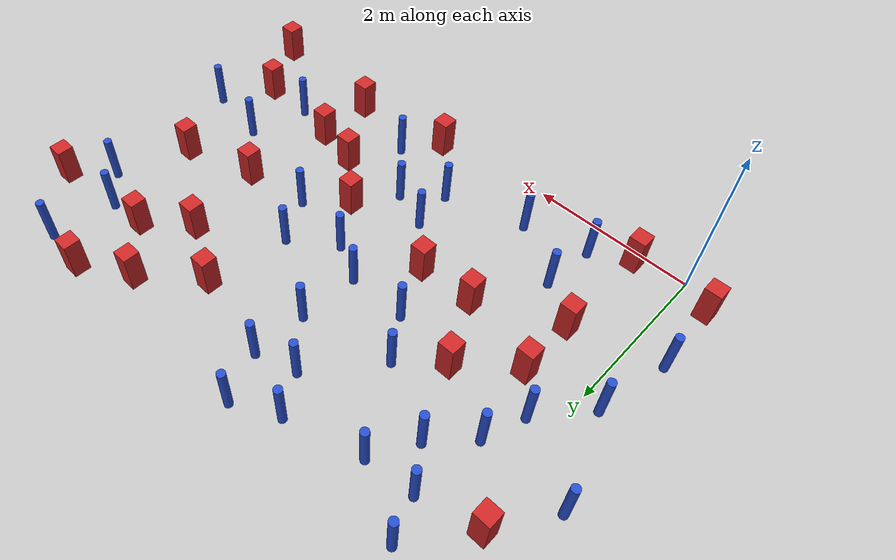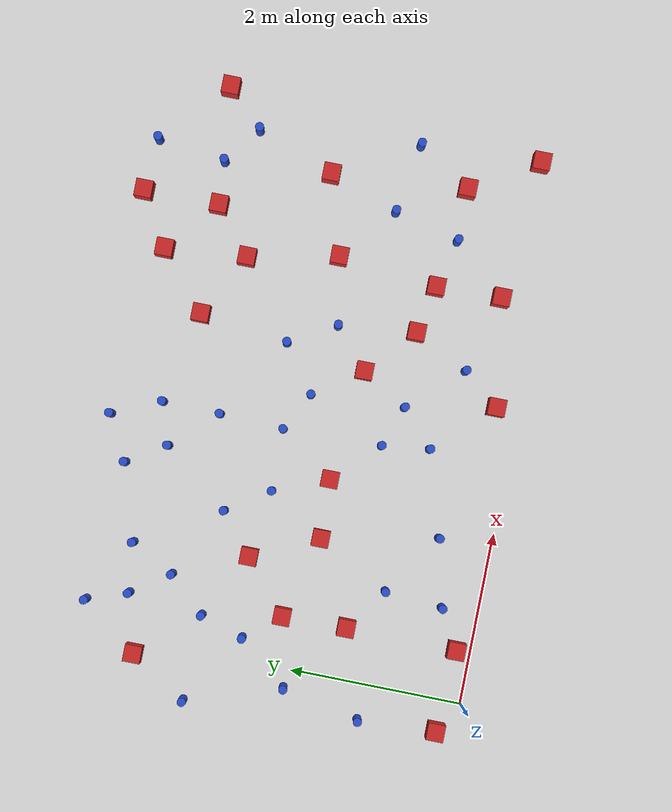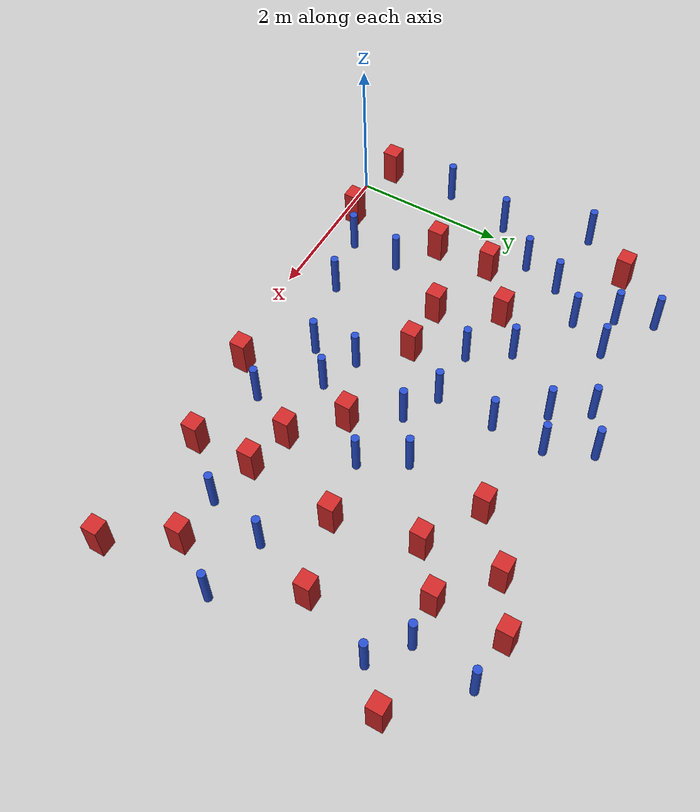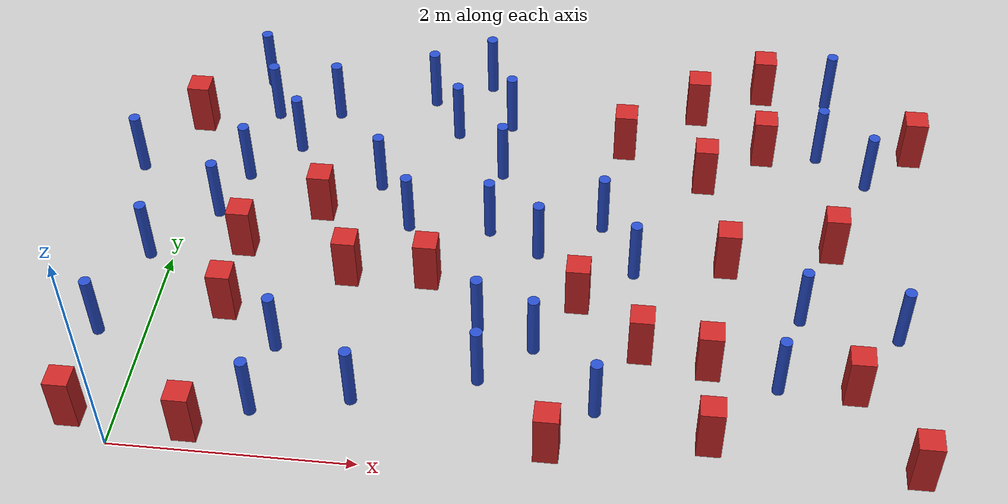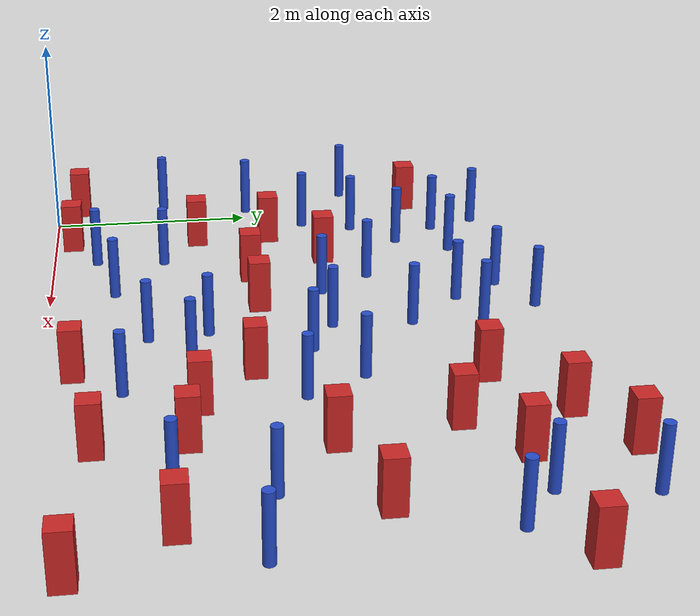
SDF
<sdf version="1.6">
 <model name="dense_98">
  <model name="pole_obstacle1">
   <static>true</static>
   <pose>1.99328007282 4.33544630047 7.38925637345e-09 -8.471706928e-08 1.24976765202e-08 -1.7451309301e-07</pose>
   <link name="link">
    <pose>0 0 0.3 0 -0 0</pose>
    <inertial>
     <mass>1</mass>
     <inertia><ixx>0.145833</ixx><ixy>0</ixy><ixz>0</ixz><iyy>0.145833</iyy><iyz>0</iyz><izz>0.125</izz></inertia>
    </inertial>
    <collision name="collision">
     <geometry><cylinder><radius>0.05</radius><length>.6</length></cylinder></geometry>
    </collision>
    <visual name="visual">
     <geometry><cylinder><radius>0.05</radius><length>.6</length></cylinder></geometry>
     <material>
      <script><name>Gazebo/Blue</name><uri>file://media/materials/scripts/gazebo.material</uri></script>
     </material>
    </visual>
   </link>
  </model>
  <model name="pole_obstacle23">
   <static>true</static>
   <pose>-0.202655463084 2.04438907129 7.38925637345e-09 -8.47170692797e-08 1.24976764929e-08 -1.74513093024e-07</pose>
   <link name="link">
    <pose>0 0 0.3 0 -0 0</pose>
    <inertial>
     <mass>1</mass>
     <inertia><ixx>0.145833</ixx><ixy>0</ixy><ixz>0</ixz><iyy>0.145833</iyy><iyz>0</iyz><izz>0.125</izz></inertia>
    </inertial>
    <collision name="collision">
     <geometry><cylinder><radius>0.05</radius><length>.6</length></cylinder></geometry>
    </collision>
    <visual name="visual">
     <geometry><cylinder><radius>0.05</radius><length>.6</length></cylinder></geometry>
     <material>
      <script><name>Gazebo/Blue</name><uri>file://media/materials/scripts/gazebo.material</uri></script>
     </material>
    </visual>
   </link>
  </model>
  <model name="pole_obstacle25">
   <static>true</static>
   <pose>2.74840885819 1.47649619067 7.38925637345e-09 -8.471706928e-08 1.24976765152e-08 -1.74513093012e-07</pose>
   <link name="link">
    <pose>0 0 0.3 0 -0 0</pose>
    <inertial>
     <mass>1</mass>
     <inertia><ixx>0.145833</ixx><ixy>0</ixy><ixz>0</ixz><iyy>0.145833</iyy><iyz>0</iyz><izz>0.125</izz></inertia>
    </inertial>
    <collision name="collision">
     <geometry><cylinder><radius>0.05</radius><length>.6</length></cylinder></geometry>
    </collision>
    <visual name="visual">
     <geometry><cylinder><radius>0.05</radius><length>.6</length></cylinder></geometry>
     <material>
      <script><name>Gazebo/Blue</name><uri>file://media/materials/scripts/gazebo.material</uri></script>
     </material>
    </visual>
   </link>
  </model>
  <model name="pole_obstacle28">
   <static>true</static>
   <pose>5.61331978366 3.88643642091 7.38925637345e-09 -8.47170692798e-08 1.24976764937e-08 -1.74513093023e-07</pose>
   <link name="link">
    <pose>0 0 0.3 0 -0 0</pose>
    <inertial>
     <mass>1</mass>
     <inertia><ixx>0.145833</ixx><ixy>0</ixy><ixz>0</ixz><iyy>0.145833</iyy><iyz>0</iyz><izz>0.125</izz></inertia>
    </inertial>
    <collision name="collision">
     <geometry><cylinder><radius>0.05</radius><length>.6</length></cylinder></geometry>
    </collision>
    <visual name="visual">
     <geometry><cylinder><radius>0.05</radius><length>.6</length></cylinder></geometry>
     <material>
      <script><name>Gazebo/Blue</name><uri>file://media/materials/scripts/gazebo.material</uri></script>
     </material>
    </visual>
   </link>
  </model>
  <model name="pole_obstacle32">
   <static>true</static>
   <pose>1.66450686175 3.10806377922 7.38925637345e-09 -8.47170692799e-08 1.24976765053e-08 -1.74513093017e-07</pose>
   <link name="link">
    <pose>0 0 0.3 0 -0 0</pose>
    <inertial>
     <mass>1</mass>
     <inertia><ixx>0.145833</ixx><ixy>0</ixy><ixz>0</ixz><iyy>0.145833</iyy><iyz>0</iyz><izz>0.125</izz></inertia>
    </inertial>
    <collision name="collision">
     <geometry><cylinder><radius>0.05</radius><length>.6</length></cylinder></geometry>
    </collision>
    <visual name="visual">
     <geometry><cylinder><radius>0.05</radius><length>.6</length></cylinder></geometry>
     <material>
      <script><name>Gazebo/Blue</name><uri>file://media/materials/scripts/gazebo.material</uri></script>
     </material>
    </visual>
   </link>
  </model>
  <model name="pole_obstacle36">
   <static>true</static>
   <pose>0.52809508491 3.99513970842 7.38925637345e-09 -8.47170692799e-08 1.24976765006e-08 -1.7451309302e-07</pose>
   <link name="link">
    <pose>0 0 0.3 0 -0 0</pose>
    <inertial>
     <mass>1</mass>
     <inertia><ixx>0.145833</ixx><ixy>0</ixy><ixz>0</ixz><iyy>0.145833</iyy><iyz>0</iyz><izz>0.125</izz></inertia>
    </inertial>
    <collision name="collision">
     <geometry><cylinder><radius>0.05</radius><length>.6</length></cylinder></geometry>
    </collision>
    <visual name="visual">
     <geometry><cylinder><radius>0.05</radius><length>.6</length></cylinder></geometry>
     <material>
      <script><name>Gazebo/Blue</name><uri>file://media/materials/scripts/gazebo.material</uri></script>
     </material>
    </visual>
   </link>
  </model>
  <model name="pole_obstacle43">
   <static>true</static>
   <pose>1.11358468092 1.10883143147 7.38925637345e-09 -8.471706928e-08 1.24976765079e-08 -1.74513093017e-07</pose>
   <link name="link">
    <pose>0 0 0.3 0 -0 0</pose>
    <inertial>
     <mass>1</mass>
     <inertia><ixx>0.145833</ixx><ixy>0</ixy><ixz>0</ixz><iyy>0.145833</iyy><iyz>0</iyz><izz>0.125</izz></inertia>
    </inertial>
    <collision name="collision">
     <geometry><cylinder><radius>0.05</radius><length>.6</length></cylinder></geometry>
    </collision>
    <visual name="visual">
     <geometry><cylinder><radius>0.05</radius><length>.6</length></cylinder></geometry>
     <material>
      <script><name>Gazebo/Blue</name><uri>file://media/materials/scripts/gazebo.material</uri></script>
     </material>
    </visual>
   </link>
  </model>
  <model name="square_post_obstacle35">
   <static>true</static>
   <pose>4.49472661884 4.36413959373 1.91545236811e-07 -7.35059704564e-06 1.12565212e-07 2.39332434364e-05</pose>
   <link name="link">
    <pose>0 0 0.25 0 -0 0</pose>
    <inertial>
     <mass>100</mass>
     <inertia>
      <ixx>0.166667</ixx>
      <ixy>0</ixy>
      <ixz>0</ixz>
      <iyy>0.166667</iyy>
      <iyz>0</iyz>
      <izz>0.166667</izz>
     </inertia>
    </inertial>
    <collision name="collision"><geometry><box><size>.2 .2 .5</size></box></geometry></collision>
    <visual name="visual">
     <geometry><box><size>.2 .2 .5</size></box></geometry>
     <material>
      <script><name>Gazebo/Red</name><uri>file://media/materials/scripts/gazebo.material</uri></script>
     </material>
    </visual>
   </link>
  </model>
  <model name="pole_obstacle56">
   <static>true</static>
   <pose>2.81671026725 0.924290170854 7.38925637345e-09 -8.471706928e-08 1.24976765177e-08 -1.74513093012e-07</pose>
   <link name="link">
    <pose>0 0 0.3 0 -0 0</pose>
    <inertial>
     <mass>1</mass>
     <inertia><ixx>0.145833</ixx><ixy>0</ixy><ixz>0</ixz><iyy>0.145833</iyy><iyz>0</iyz><izz>0.125</izz></inertia>
    </inertial>
    <collision name="collision">
     <geometry><cylinder><radius>0.05</radius><length>.6</length></cylinder></geometry>
    </collision>
    <visual name="visual">
     <geometry><cylinder><radius>0.05</radius><length>.6</length></cylinder></geometry>
     <material>
      <script><name>Gazebo/Blue</name><uri>file://media/materials/scripts/gazebo.material</uri></script>
     </material>
    </visual>
   </link>
  </model>
  <model name="pole_obstacle60">
   <static>true</static>
   <pose>1.83155018089 0.620157821392 7.38925637345e-09 -8.47170692799e-08 1.24976765075e-08 -1.74513093017e-07</pose>
   <link name="link">
    <pose>0 0 0.3 0 -0 0</pose>
    <inertial>
     <mass>1</mass>
     <inertia><ixx>0.145833</ixx><ixy>0</ixy><ixz>0</ixz><iyy>0.145833</iyy><iyz>0</iyz><izz>0.125</izz></inertia>
    </inertial>
    <collision name="collision">
     <geometry><cylinder><radius>0.05</radius><length>.6</length></cylinder></geometry>
    </collision>
    <visual name="visual">
     <geometry><cylinder><radius>0.05</radius><length>.6</length></cylinder></geometry>
     <material>
      <script><name>Gazebo/Blue</name><uri>file://media/materials/scripts/gazebo.material</uri></script>
     </material>
    </visual>
   </link>
  </model>
  <model name="pole_obstacle81">
   <static>true</static>
   <pose>2.74621569835 3.37095253552 7.38925637345e-09 -8.47170692798e-08 1.24976764939e-08 -1.74513093025e-07</pose>
   <link name="link">
    <pose>0 0 0.3 0 -0 0</pose>
    <inertial>
     <mass>1</mass>
     <inertia><ixx>0.145833</ixx><ixy>0</ixy><ixz>0</ixz><iyy>0.145833</iyy><iyz>0</iyz><izz>0.125</izz></inertia>
    </inertial>
    <collision name="collision">
     <geometry><cylinder><radius>0.05</radius><length>.6</length></cylinder></geometry>
    </collision>
    <visual name="visual">
     <geometry><cylinder><radius>0.05</radius><length>.6</length></cylinder></geometry>
     <material>
      <script><name>Gazebo/Blue</name><uri>file://media/materials/scripts/gazebo.material</uri></script>
     </material>
    </visual>
   </link>
  </model>
  <model name="square_post_obstacle72">
   <static>true</static>
   <pose>5.7117779515 2.65050151546 1.91545236811e-07 -7.35059704564e-06 1.12565212e-07 2.39332434364e-05</pose>
   <link name="link">
    <pose>0 0 0.25 0 -0 0</pose>
    <inertial>
     <mass>100</mass>
     <inertia>
      <ixx>0.166667</ixx>
      <ixy>0</ixy>
      <ixz>0</ixz>
      <iyy>0.166667</iyy>
      <iyz>0</iyz>
      <izz>0.166667</izz>
     </inertia>
    </inertial>
    <collision name="collision"><geometry><box><size>.2 .2 .5</size></box></geometry></collision>
    <visual name="visual">
     <geometry><box><size>.2 .2 .5</size></box></geometry>
     <material>
      <script><name>Gazebo/Red</name><uri>file://media/materials/scripts/gazebo.material</uri></script>
     </material>
    </visual>
   </link>
  </model>
  <model name="pole_obstacle83">
   <static>true</static>
   <pose>-0.565187128425 3.14880887552 7.38925637345e-09 -8.47170692799e-08 1.2497676509e-08 -1.74513093016e-07</pose>
   <link name="link">
    <pose>0 0 0.3 0 -0 0</pose>
    <inertial>
     <mass>1</mass>
     <inertia><ixx>0.145833</ixx><ixy>0</ixy><ixz>0</ixz><iyy>0.145833</iyy><iyz>0</iyz><izz>0.125</izz></inertia>
    </inertial>
    <collision name="collision">
     <geometry><cylinder><radius>0.05</radius><length>.6</length></cylinder></geometry>
    </collision>
    <visual name="visual">
     <geometry><cylinder><radius>0.05</radius><length>.6</length></cylinder></geometry>
     <material>
      <script><name>Gazebo/Blue</name><uri>file://media/materials/scripts/gazebo.material</uri></script>
     </material>
    </visual>
   </link>
  </model>
  <model name="pole_obstacle84">
   <static>true</static>
   <pose>6.04603668709 3.55796607895 7.38925637345e-09 -8.47170692798e-08 1.24976764937e-08 -1.74513093023e-07</pose>
   <link name="link">
    <pose>0 0 0.3 0 -0 0</pose>
    <inertial>
     <mass>1</mass>
     <inertia><ixx>0.145833</ixx><ixy>0</ixy><ixz>0</ixz><iyy>0.145833</iyy><iyz>0</iyz><izz>0.125</izz></inertia>
    </inertial>
    <collision name="collision">
     <geometry><cylinder><radius>0.05</radius><length>.6</length></cylinder></geometry>
    </collision>
    <visual name="visual">
     <geometry><cylinder><radius>0.05</radius><length>.6</length></cylinder></geometry>
     <material>
      <script><name>Gazebo/Blue</name><uri>file://media/materials/scripts/gazebo.material</uri></script>
     </material>
    </visual>
   </link>
  </model>
  <model name="square_post_obstacle80">
   <static>true</static>
   <pose>4.66591766662 1.21706297758 1.91545236811e-07 -7.35059704564e-06 1.12565212e-07 2.39332434364e-05</pose>
   <link name="link">
    <pose>0 0 0.25 0 -0 0</pose>
    <inertial>
     <mass>100</mass>
     <inertia>
      <ixx>0.166667</ixx>
      <ixy>0</ixy>
      <ixz>0</ixz>
      <iyy>0.166667</iyy>
      <iyz>0</iyz>
      <izz>0.166667</izz>
     </inertia>
    </inertial>
    <collision name="collision"><geometry><box><size>.2 .2 .5</size></box></geometry></collision>
    <visual name="visual">
     <geometry><box><size>.2 .2 .5</size></box></geometry>
     <material>
      <script><name>Gazebo/Red</name><uri>file://media/materials/scripts/gazebo.material</uri></script>
     </material>
    </visual>
   </link>
  </model>
  <model name="pole_obstacle96">
   <static>true</static>
   <pose>2.71603093209 2.62401595281 7.38925637345e-09 -8.47170692798e-08 1.24976764939e-08 -1.74513093025e-07</pose>
   <link name="link">
    <pose>0 0 0.3 0 -0 0</pose>
    <inertial>
     <mass>1</mass>
     <inertia><ixx>0.145833</ixx><ixy>0</ixy><ixz>0</ixz><iyy>0.145833</iyy><iyz>0</iyz><izz>0.125</izz></inertia>
    </inertial>
    <collision name="collision">
     <geometry><cylinder><radius>0.05</radius><length>.6</length></cylinder></geometry>
    </collision>
    <visual name="visual">
     <geometry><cylinder><radius>0.05</radius><length>.6</length></cylinder></geometry>
     <material>
      <script><name>Gazebo/Blue</name><uri>file://media/materials/scripts/gazebo.material</uri></script>
     </material>
    </visual>
   </link>
  </model>
  <model name="pole_obstacle98">
   <static>true</static>
   <pose>0.271782604323 2.61920614039 7.38925637345e-09 -8.471706928e-08 1.24976765078e-08 -1.74513093017e-07</pose>
   <link name="link">
    <pose>0 0 0.3 0 -0 0</pose>
    <inertial>
     <mass>1</mass>
     <inertia><ixx>0.145833</ixx><ixy>0</ixy><ixz>0</ixz><iyy>0.145833</iyy><iyz>0</iyz><izz>0.125</izz></inertia>
    </inertial>
    <collision name="collision">
     <geometry><cylinder><radius>0.05</radius><length>.6</length></cylinder></geometry>
    </collision>
    <visual name="visual">
     <geometry><cylinder><radius>0.05</radius><length>.6</length></cylinder></geometry>
     <material>
      <script><name>Gazebo/Blue</name><uri>file://media/materials/scripts/gazebo.material</uri></script>
     </material>
    </visual>
   </link>
  </model>
  <model name="pole_obstacle99">
   <static>true</static>
   <pose>5.23298798825 1.07632659652 7.38925637345e-09 -8.471706928e-08 1.24976765134e-08 -1.74513093015e-07</pose>
   <link name="link">
    <pose>0 0 0.3 0 -0 0</pose>
    <inertial>
     <mass>1</mass>
     <inertia><ixx>0.145833</ixx><ixy>0</ixy><ixz>0</ixz><iyy>0.145833</iyy><iyz>0</iyz><izz>0.125</izz></inertia>
    </inertial>
    <collision name="collision">
     <geometry><cylinder><radius>0.05</radius><length>.6</length></cylinder></geometry>
    </collision>
    <visual name="visual">
     <geometry><cylinder><radius>0.05</radius><length>.6</length></cylinder></geometry>
     <material>
      <script><name>Gazebo/Blue</name><uri>file://media/materials/scripts/gazebo.material</uri></script>
     </material>
    </visual>
   </link>
  </model>
  <model name="square_post_obstacle96">
   <static>true</static>
   <pose>6.30606154885 0.309462328571 1.91545236811e-07 -7.35059704564e-06 1.12565212e-07 2.39332434364e-05</pose>
   <link name="link">
    <pose>0 0 0.25 0 -0 0</pose>
    <inertial>
     <mass>100</mass>
     <inertia>
      <ixx>0.166667</ixx>
      <ixy>0</ixy>
      <ixz>0</ixz>
      <iyy>0.166667</iyy>
      <iyz>0</iyz>
      <izz>0.166667</izz>
     </inertia>
    </inertial>
    <collision name="collision"><geometry><box><size>.2 .2 .5</size></box></geometry></collision>
    <visual name="visual">
     <geometry><box><size>.2 .2 .5</size></box></geometry>
     <material>
      <script><name>Gazebo/Red</name><uri>file://media/materials/scripts/gazebo.material</uri></script>
     </material>
    </visual>
   </link>
  </model>
  <model name="square_post_obstacle98">
   <static>true</static>
   <pose>4.10705369206 1.33619412559 1.91545236811e-07 -7.35059704564e-06 1.12565212e-07 2.39332434364e-05</pose>
   <link name="link">
    <pose>0 0 0.25 0 -0 0</pose>
    <inertial>
     <mass>100</mass>
     <inertia>
      <ixx>0.166667</ixx>
      <ixy>0</ixy>
      <ixz>0</ixz>
      <iyy>0.166667</iyy>
      <iyz>0</iyz>
      <izz>0.166667</izz>
     </inertia>
    </inertial>
    <collision name="collision"><geometry><box><size>.2 .2 .5</size></box></geometry></collision>
    <visual name="visual">
     <geometry><box><size>.2 .2 .5</size></box></geometry>
     <material>
      <script><name>Gazebo/Red</name><uri>file://media/materials/scripts/gazebo.material</uri></script>
     </material>
    </visual>
   </link>
  </model>
  <model name="pole_obstacle107">
   <static>true</static>
   <pose>3.78068407534 0.6943120413 7.38925637345e-09 -8.471706928e-08 1.24976765177e-08 -1.74513093012e-07</pose>
   <link name="link">
    <pose>0 0 0.3 0 -0 0</pose>
    <inertial>
     <mass>1</mass>
     <inertia><ixx>0.145833</ixx><ixy>0</ixy><ixz>0</ixz><iyy>0.145833</iyy><iyz>0</iyz><izz>0.125</izz></inertia>
    </inertial>
    <collision name="collision">
     <geometry><cylinder><radius>0.05</radius><length>.6</length></cylinder></geometry>
    </collision>
    <visual name="visual">
     <geometry><cylinder><radius>0.05</radius><length>.6</length></cylinder></geometry>
     <material>
      <script><name>Gazebo/Blue</name><uri>file://media/materials/scripts/gazebo.material</uri></script>
     </material>
    </visual>
   </link>
  </model>
  <model name="pole_obstacle108">
   <static>true</static>
   <pose>0.83301651226 3.55359654354 7.38925637345e-09 -8.47170692799e-08 1.2497676509e-08 -1.74513093016e-07</pose>
   <link name="link">
    <pose>0 0 0.3 0 -0 0</pose>
    <inertial>
     <mass>1</mass>
     <inertia><ixx>0.145833</ixx><ixy>0</ixy><ixz>0</ixz><iyy>0.145833</iyy><iyz>0</iyz><izz>0.125</izz></inertia>
    </inertial>
    <collision name="collision">
     <geometry><cylinder><radius>0.05</radius><length>.6</length></cylinder></geometry>
    </collision>
    <visual name="visual">
     <geometry><cylinder><radius>0.05</radius><length>.6</length></cylinder></geometry>
     <material>
      <script><name>Gazebo/Blue</name><uri>file://media/materials/scripts/gazebo.material</uri></script>
     </material>
    </visual>
   </link>
  </model>
  <model name="square_post_obstacle125">
   <static>true</static>
   <pose>0.617754110919 1.46948923768 1.91545236811e-07 -7.35059704564e-06 1.12565212e-07 2.39332434364e-05</pose>
   <link name="link">
    <pose>0 0 0.25 0 -0 0</pose>
    <inertial>
     <mass>100</mass>
     <inertia>
      <ixx>0.166667</ixx>
      <ixy>0</ixy>
      <ixz>0</ixz>
      <iyy>0.166667</iyy>
      <iyz>0</iyz>
      <izz>0.166667</izz>
     </inertia>
    </inertial>
    <collision name="collision"><geometry><box><size>.2 .2 .5</size></box></geometry></collision>
    <visual name="visual">
     <geometry><box><size>.2 .2 .5</size></box></geometry>
     <material>
      <script><name>Gazebo/Red</name><uri>file://media/materials/scripts/gazebo.material</uri></script>
     </material>
    </visual>
   </link>
  </model>
  <model name="square_post_obstacle126">
   <static>true</static>
   <pose>1.56883489974 1.95516472018 1.91545236811e-07 -7.35059704564e-06 1.12565212e-07 2.39332434364e-05</pose>
   <link name="link">
    <pose>0 0 0.25 0 -0 0</pose>
    <inertial>
     <mass>100</mass>
     <inertia>
      <ixx>0.166667</ixx>
      <ixy>0</ixy>
      <ixz>0</ixz>
      <iyy>0.166667</iyy>
      <iyz>0</iyz>
      <izz>0.166667</izz>
     </inertia>
    </inertial>
    <collision name="collision"><geometry><box><size>.2 .2 .5</size></box></geometry></collision>
    <visual name="visual">
     <geometry><box><size>.2 .2 .5</size></box></geometry>
     <material>
      <script><name>Gazebo/Red</name><uri>file://media/materials/scripts/gazebo.material</uri></script>
     </material>
    </visual>
   </link>
  </model>
  <model name="square_post_obstacle129">
   <static>true</static>
   <pose>5.10952692283 3.8490213124 1.91545236811e-07 -7.35059704564e-06 1.12565212e-07 2.39332434364e-05</pose>
   <link name="link">
    <pose>0 0 0.25 0 -0 0</pose>
    <inertial>
     <mass>100</mass>
     <inertia>
      <ixx>0.166667</ixx>
      <ixy>0</ixy>
      <ixz>0</ixz>
      <iyy>0.166667</iyy>
      <iyz>0</iyz>
      <izz>0.166667</izz>
     </inertia>
    </inertial>
    <collision name="collision"><geometry><box><size>.2 .2 .5</size></box></geometry></collision>
    <visual name="visual">
     <geometry><box><size>.2 .2 .5</size></box></geometry>
     <material>
      <script><name>Gazebo/Red</name><uri>file://media/materials/scripts/gazebo.material</uri></script>
     </material>
    </visual>
   </link>
  </model>
  <model name="pole_obstacle134">
   <static>true</static>
   <pose>-0.3972687011 1.13801452622 7.38925637345e-09 -8.47170692798e-08 1.24976765025e-08 -1.74513093018e-07</pose>
   <link name="link">
    <pose>0 0 0.3 0 -0 0</pose>
    <inertial>
     <mass>1</mass>
     <inertia><ixx>0.145833</ixx><ixy>0</ixy><ixz>0</ixz><iyy>0.145833</iyy><iyz>0</iyz><izz>0.125</izz></inertia>
    </inertial>
    <collision name="collision">
     <geometry><cylinder><radius>0.05</radius><length>.6</length></cylinder></geometry>
    </collision>
    <visual name="visual">
     <geometry><cylinder><radius>0.05</radius><length>.6</length></cylinder></geometry>
     <material>
      <script><name>Gazebo/Blue</name><uri>file://media/materials/scripts/gazebo.material</uri></script>
     </material>
    </visual>
   </link>
  </model>
  <model name="square_post_obstacle135">
   <static>true</static>
   <pose>4.58000297488 3.41694430325 1.91545236811e-07 -7.35059704564e-06 1.12565212e-07 2.39332434364e-05</pose>
   <link name="link">
    <pose>0 0 0.25 0 -0 0</pose>
    <inertial>
     <mass>100</mass>
     <inertia>
      <ixx>0.166667</ixx>
      <ixy>0</ixy>
      <ixz>0</ixz>
      <iyy>0.166667</iyy>
      <iyz>0</iyz>
      <izz>0.166667</izz>
     </inertia>
    </inertial>
    <collision name="collision"><geometry><box><size>.2 .2 .5</size></box></geometry></collision>
    <visual name="visual">
     <geometry><box><size>.2 .2 .5</size></box></geometry>
     <material>
      <script><name>Gazebo/Red</name><uri>file://media/materials/scripts/gazebo.material</uri></script>
     </material>
    </visual>
   </link>
  </model>
  <model name="square_post_obstacle138">
   <static>true</static>
   <pose>5.8442672942 1.08039177608 1.91545236811e-07 -7.35059704564e-06 1.12565212e-07 2.39332434364e-05</pose>
   <link name="link">
    <pose>0 0 0.25 0 -0 0</pose>
    <inertial>
     <mass>100</mass>
     <inertia>
      <ixx>0.166667</ixx>
      <ixy>0</ixy>
      <ixz>0</ixz>
      <iyy>0.166667</iyy>
      <iyz>0</iyz>
      <izz>0.166667</izz>
     </inertia>
    </inertial>
    <collision name="collision"><geometry><box><size>.2 .2 .5</size></box></geometry></collision>
    <visual name="visual">
     <geometry><box><size>.2 .2 .5</size></box></geometry>
     <material>
      <script><name>Gazebo/Red</name><uri>file://media/materials/scripts/gazebo.material</uri></script>
     </material>
    </visual>
   </link>
  </model>
  <model name="square_post_obstacle140">
   <static>true</static>
   <pose>-0.347591691699 0.234291800025 1.91545236811e-07 -7.35059704564e-06 1.12565212e-07 2.39332434364e-05</pose>
   <link name="link">
    <pose>0 0 0.25 0 -0 0</pose>
    <inertial>
     <mass>100</mass>
     <inertia>
      <ixx>0.166667</ixx>
      <ixy>0</ixy>
      <ixz>0</ixz>
      <iyy>0.166667</iyy>
      <iyz>0</iyz>
      <izz>0.166667</izz>
     </inertia>
    </inertial>
    <collision name="collision"><geometry><box><size>.2 .2 .5</size></box></geometry></collision>
    <visual name="visual">
     <geometry><box><size>.2 .2 .5</size></box></geometry>
     <material>
      <script><name>Gazebo/Red</name><uri>file://media/materials/scripts/gazebo.material</uri></script>
     </material>
    </visual>
   </link>
  </model>
  <model name="pole_obstacle146">
   <static>true</static>
   <pose>6.2349067922 1.70053526463 7.38925637345e-09 -8.471706928e-08 1.24976765134e-08 -1.74513093015e-07</pose>
   <link name="link">
    <pose>0 0 0.3 0 -0 0</pose>
    <inertial>
     <mass>1</mass>
     <inertia><ixx>0.145833</ixx><ixy>0</ixy><ixz>0</ixz><iyy>0.145833</iyy><iyz>0</iyz><izz>0.125</izz></inertia>
    </inertial>
    <collision name="collision">
     <geometry><cylinder><radius>0.05</radius><length>.6</length></cylinder></geometry>
    </collision>
    <visual name="visual">
     <geometry><cylinder><radius>0.05</radius><length>.6</length></cylinder></geometry>
     <material>
      <script><name>Gazebo/Blue</name><uri>file://media/materials/scripts/gazebo.material</uri></script>
     </material>
    </visual>
   </link>
  </model>
  <model name="pole_obstacle147">
   <static>true</static>
   <pose>2.27457025655 3.8860952235 7.38925637345e-09 -8.47170692798e-08 1.24976764939e-08 -1.74513093025e-07</pose>
   <link name="link">
    <pose>0 0 0.3 0 -0 0</pose>
    <inertial>
     <mass>1</mass>
     <inertia><ixx>0.145833</ixx><ixy>0</ixy><ixz>0</ixz><iyy>0.145833</iyy><iyz>0</iyz><izz>0.125</izz></inertia>
    </inertial>
    <collision name="collision">
     <geometry><cylinder><radius>0.05</radius><length>.6</length></cylinder></geometry>
    </collision>
    <visual name="visual">
     <geometry><cylinder><radius>0.05</radius><length>.6</length></cylinder></geometry>
     <material>
      <script><name>Gazebo/Blue</name><uri>file://media/materials/scripts/gazebo.material</uri></script>
     </material>
    </visual>
   </link>
  </model>
  <model name="pole_obstacle150">
   <static>true</static>
   <pose>1.10676502445 4.06251789575 7.38925637345e-09 -8.47170692799e-08 1.24976765033e-08 -1.74513093018e-07</pose>
   <link name="link">
    <pose>0 0 0.3 0 -0 0</pose>
    <inertial>
     <mass>1</mass>
     <inertia><ixx>0.145833</ixx><ixy>0</ixy><ixz>0</ixz><iyy>0.145833</iyy><iyz>0</iyz><izz>0.125</izz></inertia>
    </inertial>
    <collision name="collision">
     <geometry><cylinder><radius>0.05</radius><length>.6</length></cylinder></geometry>
    </collision>
    <visual name="visual">
     <geometry><cylinder><radius>0.05</radius><length>.6</length></cylinder></geometry>
     <material>
      <script><name>Gazebo/Blue</name><uri>file://media/materials/scripts/gazebo.material</uri></script>
     </material>
    </visual>
   </link>
  </model>
  <model name="pole_obstacle158">
   <static>true</static>
   <pose>1.0522010473 0.433872720955 7.38925637345e-09 -8.47170692799e-08 1.24976765065e-08 -1.74513093017e-07</pose>
   <link name="link">
    <pose>0 0 0.3 0 -0 0</pose>
    <inertial>
     <mass>1</mass>
     <inertia><ixx>0.145833</ixx><ixy>0</ixy><ixz>0</ixz><iyy>0.145833</iyy><iyz>0</iyz><izz>0.125</izz></inertia>
    </inertial>
    <collision name="collision">
     <geometry><cylinder><radius>0.05</radius><length>.6</length></cylinder></geometry>
    </collision>
    <visual name="visual">
     <geometry><cylinder><radius>0.05</radius><length>.6</length></cylinder></geometry>
     <material>
      <script><name>Gazebo/Blue</name><uri>file://media/materials/scripts/gazebo.material</uri></script>
     </material>
    </visual>
   </link>
  </model>
  <model name="pole_obstacle161">
   <static>true</static>
   <pose>2.50937883521 4.60758102123 7.38925637345e-09 -8.47170692798e-08 1.24976765033e-08 -1.74513093019e-07</pose>
   <link name="link">
    <pose>0 0 0.3 0 -0 0</pose>
    <inertial>
     <mass>1</mass>
     <inertia><ixx>0.145833</ixx><ixy>0</ixy><ixz>0</ixz><iyy>0.145833</iyy><iyz>0</iyz><izz>0.125</izz></inertia>
    </inertial>
    <collision name="collision">
     <geometry><cylinder><radius>0.05</radius><length>.6</length></cylinder></geometry>
    </collision>
    <visual name="visual">
     <geometry><cylinder><radius>0.05</radius><length>.6</length></cylinder></geometry>
     <material>
      <script><name>Gazebo/Blue</name><uri>file://media/materials/scripts/gazebo.material</uri></script>
     </material>
    </visual>
   </link>
  </model>
  <model name="pole_obstacle163">
   <static>true</static>
   <pose>3.23194769773 1.30127650916 7.38925637345e-09 -8.471706928e-08 1.24976765152e-08 -1.74513093012e-07</pose>
   <link name="link">
    <pose>0 0 0.3 0 -0 0</pose>
    <inertial>
     <mass>1</mass>
     <inertia><ixx>0.145833</ixx><ixy>0</ixy><ixz>0</ixz><iyy>0.145833</iyy><iyz>0</iyz><izz>0.125</izz></inertia>
    </inertial>
    <collision name="collision">
     <geometry><cylinder><radius>0.05</radius><length>.6</length></cylinder></geometry>
    </collision>
    <visual name="visual">
     <geometry><cylinder><radius>0.05</radius><length>.6</length></cylinder></geometry>
     <material>
      <script><name>Gazebo/Blue</name><uri>file://media/materials/scripts/gazebo.material</uri></script>
     </material>
    </visual>
   </link>
  </model>
  <model name="square_post_obstacle158">
   <static>true</static>
   <pose>3.83910293947 3.80970168864 1.91545236811e-07 -7.35059704564e-06 1.12565212e-07 2.39332434364e-05</pose>
   <link name="link">
    <pose>0 0 0.25 0 -0 0</pose>
    <inertial>
     <mass>100</mass>
     <inertia>
      <ixx>0.166667</ixx>
      <ixy>0</ixy>
      <ixz>0</ixz>
      <iyy>0.166667</iyy>
      <iyz>0</iyz>
      <izz>0.166667</izz>
     </inertia>
    </inertial>
    <collision name="collision"><geometry><box><size>.2 .2 .5</size></box></geometry></collision>
    <visual name="visual">
     <geometry><box><size>.2 .2 .5</size></box></geometry>
     <material>
      <script><name>Gazebo/Red</name><uri>file://media/materials/scripts/gazebo.material</uri></script>
     </material>
    </visual>
   </link>
  </model>
  <model name="square_post_obstacle159">
   <static>true</static>
   <pose>5.10828783764 4.72645680395 1.91545236811e-07 -7.35059704564e-06 1.12565212e-07 2.39332434364e-05</pose>
   <link name="link">
    <pose>0 0 0.25 0 -0 0</pose>
    <inertial>
     <mass>100</mass>
     <inertia>
      <ixx>0.166667</ixx>
      <ixy>0</ixy>
      <ixz>0</ixz>
      <iyy>0.166667</iyy>
      <iyz>0</iyz>
      <izz>0.166667</izz>
     </inertia>
    </inertial>
    <collision name="collision"><geometry><box><size>.2 .2 .5</size></box></geometry></collision>
    <visual name="visual">
     <geometry><box><size>.2 .2 .5</size></box></geometry>
     <material>
      <script><name>Gazebo/Red</name><uri>file://media/materials/scripts/gazebo.material</uri></script>
     </material>
    </visual>
   </link>
  </model>
  <model name="square_post_obstacle162">
   <static>true</static>
   <pose>6.4665036675 3.9785647192 1.91545236811e-07 -7.35059704564e-06 1.12565212e-07 2.39332434364e-05</pose>
   <link name="link">
    <pose>0 0 0.25 0 -0 0</pose>
    <inertial>
     <mass>100</mass>
     <inertia>
      <ixx>0.166667</ixx>
      <ixy>0</ixy>
      <ixz>0</ixz>
      <iyy>0.166667</iyy>
      <iyz>0</iyz>
      <izz>0.166667</izz>
     </inertia>
    </inertial>
    <collision name="collision"><geometry><box><size>.2 .2 .5</size></box></geometry></collision>
    <visual name="visual">
     <geometry><box><size>.2 .2 .5</size></box></geometry>
     <material>
      <script><name>Gazebo/Red</name><uri>file://media/materials/scripts/gazebo.material</uri></script>
     </material>
    </visual>
   </link>
  </model>
  <model name="square_post_obstacle167">
   <static>true</static>
   <pose>-0.14296501739 3.80944084457 1.91545236811e-07 -7.35059704564e-06 1.12565212e-07 2.39332434364e-05</pose>
   <link name="link">
    <pose>0 0 0.25 0 -0 0</pose>
    <inertial>
     <mass>100</mass>
     <inertia>
      <ixx>0.166667</ixx>
      <ixy>0</ixy>
      <ixz>0</ixz>
      <iyy>0.166667</iyy>
      <iyz>0</iyz>
      <izz>0.166667</izz>
     </inertia>
    </inertial>
    <collision name="collision"><geometry><box><size>.2 .2 .5</size></box></geometry></collision>
    <visual name="visual">
     <geometry><box><size>.2 .2 .5</size></box></geometry>
     <material>
      <script><name>Gazebo/Red</name><uri>file://media/materials/scripts/gazebo.material</uri></script>
     </material>
    </visual>
   </link>
  </model>
  <model name="square_post_obstacle169">
   <static>true</static>
   <pose>0.605925198227 0.180335641858 1.91545236811e-07 -7.35059704564e-06 1.12565212e-07 2.39332434364e-05</pose>
   <link name="link">
    <pose>0 0 0.25 0 -0 0</pose>
    <inertial>
     <mass>100</mass>
     <inertia>
      <ixx>0.166667</ixx>
      <ixy>0</ixy>
      <ixz>0</ixz>
      <iyy>0.166667</iyy>
      <iyz>0</iyz>
      <izz>0.166667</izz>
     </inertia>
    </inertial>
    <collision name="collision"><geometry><box><size>.2 .2 .5</size></box></geometry></collision>
    <visual name="visual">
     <geometry><box><size>.2 .2 .5</size></box></geometry>
     <material>
      <script><name>Gazebo/Red</name><uri>file://media/materials/scripts/gazebo.material</uri></script>
     </material>
    </visual>
   </link>
  </model>
  <model name="pole_obstacle175">
   <static>true</static>
   <pose>5.7197548134 4.67722303747 7.38925637345e-09 -8.47170692796e-08 1.24976764786e-08 -1.74513093032e-07</pose>
   <link name="link">
    <pose>0 0 0.3 0 -0 0</pose>
    <inertial>
     <mass>1</mass>
     <inertia><ixx>0.145833</ixx><ixy>0</ixy><ixz>0</ixz><iyy>0.145833</iyy><iyz>0</iyz><izz>0.125</izz></inertia>
    </inertial>
    <collision name="collision">
     <geometry><cylinder><radius>0.05</radius><length>.6</length></cylinder></geometry>
    </collision>
    <visual name="visual">
     <geometry><cylinder><radius>0.05</radius><length>.6</length></cylinder></geometry>
     <material>
      <script><name>Gazebo/Blue</name><uri>file://media/materials/scripts/gazebo.material</uri></script>
     </material>
    </visual>
   </link>
  </model>
  <model name="pole_obstacle177">
   <static>true</static>
   <pose>5.42389768005 1.83849299928 7.38925637345e-09 -8.471706928e-08 1.24976765134e-08 -1.74513093015e-07</pose>
   <link name="link">
    <pose>0 0 0.3 0 -0 0</pose>
    <inertial>
     <mass>1</mass>
     <inertia><ixx>0.145833</ixx><ixy>0</ixy><ixz>0</ixz><iyy>0.145833</iyy><iyz>0</iyz><izz>0.125</izz></inertia>
    </inertial>
    <collision name="collision">
     <geometry><cylinder><radius>0.05</radius><length>.6</length></cylinder></geometry>
    </collision>
    <visual name="visual">
     <geometry><cylinder><radius>0.05</radius><length>.6</length></cylinder></geometry>
     <material>
      <script><name>Gazebo/Blue</name><uri>file://media/materials/scripts/gazebo.material</uri></script>
     </material>
    </visual>
   </link>
  </model>
  <model name="square_post_obstacle190">
   <static>true</static>
   <pose>2.25427345611 1.98426006907 1.91545236811e-07 -7.35059704564e-06 1.12565212e-07 2.39332434364e-05</pose>
   <link name="link">
    <pose>0 0 0.25 0 -0 0</pose>
    <inertial>
     <mass>100</mass>
     <inertia>
      <ixx>0.166667</ixx>
      <ixy>0</ixy>
      <ixz>0</ixz>
      <iyy>0.166667</iyy>
      <iyz>0</iyz>
      <izz>0.166667</izz>
     </inertia>
    </inertial>
    <collision name="collision"><geometry><box><size>.2 .2 .5</size></box></geometry></collision>
    <visual name="visual">
     <geometry><box><size>.2 .2 .5</size></box></geometry>
     <material>
      <script><name>Gazebo/Red</name><uri>file://media/materials/scripts/gazebo.material</uri></script>
     </material>
    </visual>
   </link>
  </model>
  <model name="pole_obstacle189">
   <static>true</static>
   <pose>3.70158733529 2.7754520966 7.38925637345e-09 -8.47170692798e-08 1.24976764939e-08 -1.74513093025e-07</pose>
   <link name="link">
    <pose>0 0 0.3 0 -0 0</pose>
    <inertial>
     <mass>1</mass>
     <inertia><ixx>0.145833</ixx><ixy>0</ixy><ixz>0</ixz><iyy>0.145833</iyy><iyz>0</iyz><izz>0.125</izz></inertia>
    </inertial>
    <collision name="collision">
     <geometry><cylinder><radius>0.05</radius><length>.6</length></cylinder></geometry>
    </collision>
    <visual name="visual">
     <geometry><cylinder><radius>0.05</radius><length>.6</length></cylinder></geometry>
     <material>
      <script><name>Gazebo/Blue</name><uri>file://media/materials/scripts/gazebo.material</uri></script>
     </material>
    </visual>
   </link>
  </model>
  <model name="square_post_obstacle198">
   <static>true</static>
   <pose>0.60532845731 2.21660597982 1.91545236811e-07 -7.35059704564e-06 1.12565212e-07 2.39332434364e-05</pose>
   <link name="link">
    <pose>0 0 0.25 0 -0 0</pose>
    <inertial>
     <mass>100</mass>
     <inertia>
      <ixx>0.166667</ixx>
      <ixy>0</ixy>
      <ixz>0</ixz>
      <iyy>0.166667</iyy>
      <iyz>0</iyz>
      <izz>0.166667</izz>
     </inertia>
    </inertial>
    <collision name="collision"><geometry><box><size>.2 .2 .5</size></box></geometry></collision>
    <visual name="visual">
     <geometry><box><size>.2 .2 .5</size></box></geometry>
     <material>
      <script><name>Gazebo/Red</name><uri>file://media/materials/scripts/gazebo.material</uri></script>
     </material>
    </visual>
   </link>
  </model>
  <model name="square_post_obstacle200">
   <static>true</static>
   <pose>3.55322055199 1.83694456039 1.91545236811e-07 -7.35059704564e-06 1.12565212e-07 2.39332434364e-05</pose>
   <link name="link">
    <pose>0 0 0.25 0 -0 0</pose>
    <inertial>
     <mass>100</mass>
     <inertia>
      <ixx>0.166667</ixx>
      <ixy>0</ixy>
      <ixz>0</ixz>
      <iyy>0.166667</iyy>
      <iyz>0</iyz>
      <izz>0.166667</izz>
     </inertia>
    </inertial>
    <collision name="collision"><geometry><box><size>.2 .2 .5</size></box></geometry></collision>
    <visual name="visual">
     <geometry><box><size>.2 .2 .5</size></box></geometry>
     <material>
      <script><name>Gazebo/Red</name><uri>file://media/materials/scripts/gazebo.material</uri></script>
     </material>
    </visual>
   </link>
  </model>
  <model name="square_post_obstacle203">
   <static>true</static>
   <pose>4.68693141641 0.457348028149 1.91545236811e-07 -7.35059704564e-06 1.12565212e-07 2.39332434364e-05</pose>
   <link name="link">
    <pose>0 0 0.25 0 -0 0</pose>
    <inertial>
     <mass>100</mass>
     <inertia>
      <ixx>0.166667</ixx>
      <ixy>0</ixy>
      <ixz>0</ixz>
      <iyy>0.166667</iyy>
      <iyz>0</iyz>
      <izz>0.166667</izz>
     </inertia>
    </inertial>
    <collision name="collision"><geometry><box><size>.2 .2 .5</size></box></geometry></collision>
    <visual name="visual">
     <geometry><box><size>.2 .2 .5</size></box></geometry>
     <material>
      <script><name>Gazebo/Red</name><uri>file://media/materials/scripts/gazebo.material</uri></script>
     </material>
    </visual>
   </link>
  </model>
  <model name="square_post_obstacle206">
   <static>true</static>
   <pose>3.43616653491 0.268916572859 1.91545236811e-07 -7.35059704564e-06 1.12565212e-07 2.39332434364e-05</pose>
   <link name="link">
    <pose>0 0 0.25 0 -0 0</pose>
    <inertial>
     <mass>100</mass>
     <inertia>
      <ixx>0.166667</ixx>
      <ixy>0</ixy>
      <ixz>0</ixz>
      <iyy>0.166667</iyy>
      <iyz>0</iyz>
      <izz>0.166667</izz>
     </inertia>
    </inertial>
    <collision name="collision"><geometry><box><size>.2 .2 .5</size></box></geometry></collision>
    <visual name="visual">
     <geometry><box><size>.2 .2 .5</size></box></geometry>
     <material>
      <script><name>Gazebo/Red</name><uri>file://media/materials/scripts/gazebo.material</uri></script>
     </material>
    </visual>
   </link>
  </model>
  <model name="pole_obstacle208">
   <static>true</static>
   <pose>4.00805508356 2.23429139502 7.38925637345e-09 -8.47170692799e-08 1.24976765e-08 -1.7451309302e-07</pose>
   <link name="link">
    <pose>0 0 0.3 0 -0 0</pose>
    <inertial>
     <mass>1</mass>
     <inertia><ixx>0.145833</ixx><ixy>0</ixy><ixz>0</ixz><iyy>0.145833</iyy><iyz>0</iyz><izz>0.125</izz></inertia>
    </inertial>
    <collision name="collision">
     <geometry><cylinder><radius>0.05</radius><length>.6</length></cylinder></geometry>
    </collision>
    <visual name="visual">
     <geometry><cylinder><radius>0.05</radius><length>.6</length></cylinder></geometry>
     <material>
      <script><name>Gazebo/Blue</name><uri>file://media/materials/scripts/gazebo.material</uri></script>
     </material>
    </visual>
   </link>
  </model>
  <model name="square_post_obstacle208">
   <static>true</static>
   <pose>1.20508178754 2.72438369397 1.91545236811e-07 -7.35059704564e-06 1.12565212e-07 2.39332434364e-05</pose>
   <link name="link">
    <pose>0 0 0.25 0 -0 0</pose>
    <inertial>
     <mass>100</mass>
     <inertia>
      <ixx>0.166667</ixx>
      <ixy>0</ixy>
      <ixz>0</ixz>
      <iyy>0.166667</iyy>
      <iyz>0</iyz>
      <izz>0.166667</izz>
     </inertia>
    </inertial>
    <collision name="collision"><geometry><box><size>.2 .2 .5</size></box></geometry></collision>
    <visual name="visual">
     <geometry><box><size>.2 .2 .5</size></box></geometry>
     <material>
      <script><name>Gazebo/Red</name><uri>file://media/materials/scripts/gazebo.material</uri></script>
     </material>
    </visual>
   </link>
  </model>
  <model name="pole_obstacle211">
   <static>true</static>
   <pose>3.16684485421 2.38792437919 7.38925637345e-09 -8.47170692798e-08 1.24976764939e-08 -1.74513093025e-07</pose>
   <link name="link">
    <pose>0 0 0.3 0 -0 0</pose>
    <inertial>
     <mass>1</mass>
     <inertia><ixx>0.145833</ixx><ixy>0</ixy><ixz>0</ixz><iyy>0.145833</iyy><iyz>0</iyz><izz>0.125</izz></inertia>
    </inertial>
    <collision name="collision">
     <geometry><cylinder><radius>0.05</radius><length>.6</length></cylinder></geometry>
    </collision>
    <visual name="visual">
     <geometry><cylinder><radius>0.05</radius><length>.6</length></cylinder></geometry>
     <material>
      <script><name>Gazebo/Blue</name><uri>file://media/materials/scripts/gazebo.material</uri></script>
     </material>
    </visual>
   </link>
  </model>
  <model name="square_post_obstacle214">
   <static>true</static>
   <pose>4.79573869511 2.37560151652 1.91545236811e-07 -7.35059704564e-06 1.12565212e-07 2.39332434364e-05</pose>
   <link name="link">
    <pose>0 0 0.25 0 -0 0</pose>
    <inertial>
     <mass>100</mass>
     <inertia>
      <ixx>0.166667</ixx>
      <ixy>0</ixy>
      <ixz>0</ixz>
      <iyy>0.166667</iyy>
      <iyz>0</iyz>
      <izz>0.166667</izz>
     </inertia>
    </inertial>
    <collision name="collision"><geometry><box><size>.2 .2 .5</size></box></geometry></collision>
    <visual name="visual">
     <geometry><box><size>.2 .2 .5</size></box></geometry>
     <material>
      <script><name>Gazebo/Red</name><uri>file://media/materials/scripts/gazebo.material</uri></script>
     </material>
    </visual>
   </link>
  </model>
  <model name="pole_obstacle217">
   <static>true</static>
   <pose>0.358510009575 4.46989002078 7.38925637345e-09 -8.471706928e-08 1.24976765079e-08 -1.74513093015e-07</pose>
   <link name="link">
    <pose>0 0 0.3 0 -0 0</pose>
    <inertial>
     <mass>1</mass>
     <inertia><ixx>0.145833</ixx><ixy>0</ixy><ixz>0</ixz><iyy>0.145833</iyy><iyz>0</iyz><izz>0.125</izz></inertia>
    </inertial>
    <collision name="collision">
     <geometry><cylinder><radius>0.05</radius><length>.6</length></cylinder></geometry>
    </collision>
    <visual name="visual">
     <geometry><cylinder><radius>0.05</radius><length>.6</length></cylinder></geometry>
     <material>
      <script><name>Gazebo/Blue</name><uri>file://media/materials/scripts/gazebo.material</uri></script>
     </material>
    </visual>
   </link>
  </model>
  <model name="pole_obstacle218">
   <static>true</static>
   <pose>0.438009009575 3.12675002078 7.38925637345e-09 -8.47170692793e-08 1.24976764469e-08 -1.74513093038e-07</pose>
   <link name="link">
    <pose>0 0 0.3 0 -0 0</pose>
    <inertial>
     <mass>1</mass>
     <inertia><ixx>0.145833</ixx><ixy>0</ixy><ixz>0</ixz><iyy>0.145833</iyy><iyz>0</iyz><izz>0.125</izz></inertia>
    </inertial>
    <collision name="collision">
     <geometry><cylinder><radius>0.05</radius><length>.6</length></cylinder></geometry>
    </collision>
    <visual name="visual">
     <geometry><cylinder><radius>0.05</radius><length>.6</length></cylinder></geometry>
     <material>
      <script><name>Gazebo/Blue</name><uri>file://media/materials/scripts/gazebo.material</uri></script>
     </material>
    </visual>
   </link>
  </model>
  <model name="pole_obstacle227">
   <static>true</static>
   <pose>2.75861000957 4.04391002078 7.38925637345e-09 -8.47170692799e-08 1.24976765036e-08 -1.74513093019e-07</pose>
   <link name="link">
    <pose>0 0 0.3 0 -0 0</pose>
    <inertial>
     <mass>1</mass>
     <inertia><ixx>0.145833</ixx><ixy>0</ixy><ixz>0</ixz><iyy>0.145833</iyy><iyz>0</iyz><izz>0.125</izz></inertia>
    </inertial>
    <collision name="collision">
     <geometry><cylinder><radius>0.05</radius><length>.6</length></cylinder></geometry>
    </collision>
    <visual name="visual">
     <geometry><cylinder><radius>0.05</radius><length>.6</length></cylinder></geometry>
     <material>
      <script><name>Gazebo/Blue</name><uri>file://media/materials/scripts/gazebo.material</uri></script>
     </material>
    </visual>
   </link>
  </model>
  <model name="pole_obstacle228">
   <static>true</static>
   <pose>1.99240000957 2.61421002078 7.38925637345e-09 -8.47170692799e-08 1.24976765015e-08 -1.74513093019e-07</pose>
   <link name="link">
    <pose>0 0 0.3 0 -0 0</pose>
    <inertial>
     <mass>1</mass>
     <inertia><ixx>0.145833</ixx><ixy>0</ixy><ixz>0</ixz><iyy>0.145833</iyy><iyz>0</iyz><izz>0.125</izz></inertia>
    </inertial>
    <collision name="collision">
     <geometry><cylinder><radius>0.05</radius><length>.6</length></cylinder></geometry>
    </collision>
    <visual name="visual">
     <geometry><cylinder><radius>0.05</radius><length>.6</length></cylinder></geometry>
     <material>
      <script><name>Gazebo/Blue</name><uri>file://media/materials/scripts/gazebo.material</uri></script>
     </material>
    </visual>
   </link>
  </model>
 </model>
</sdf>
